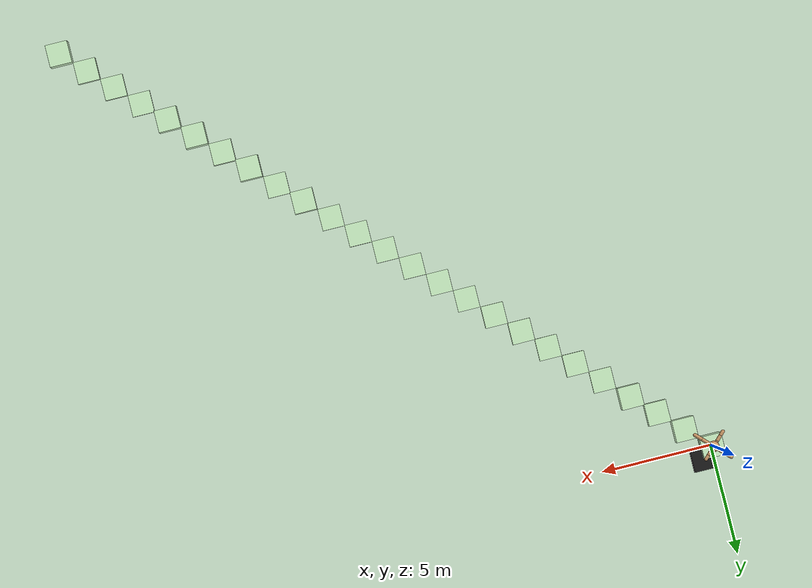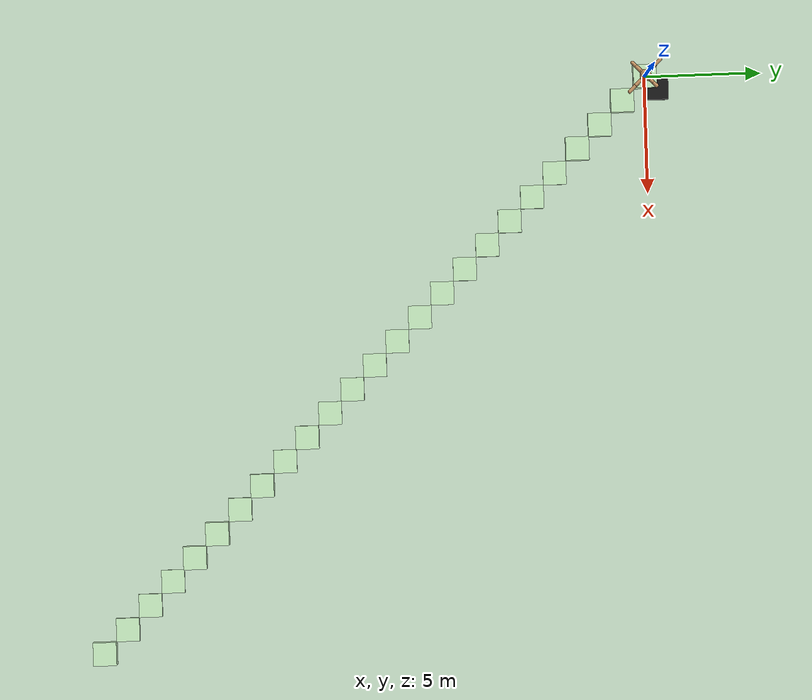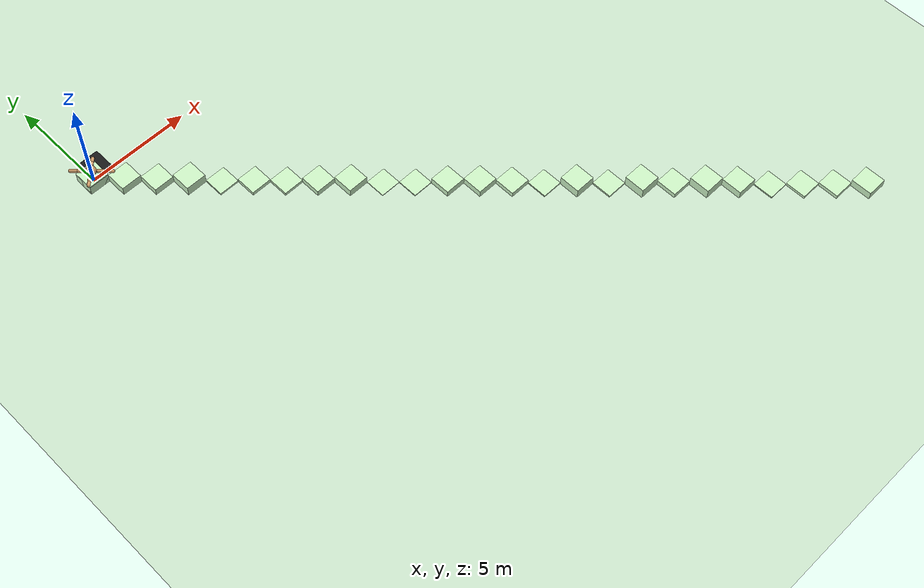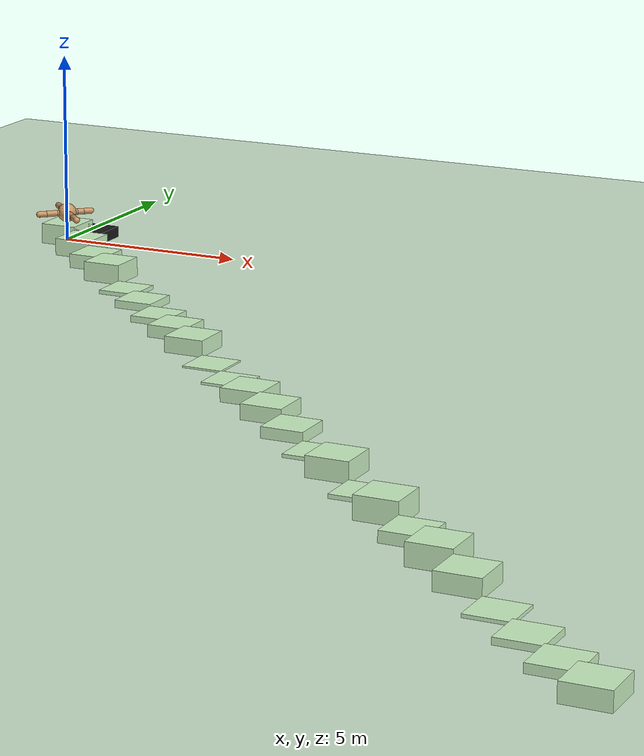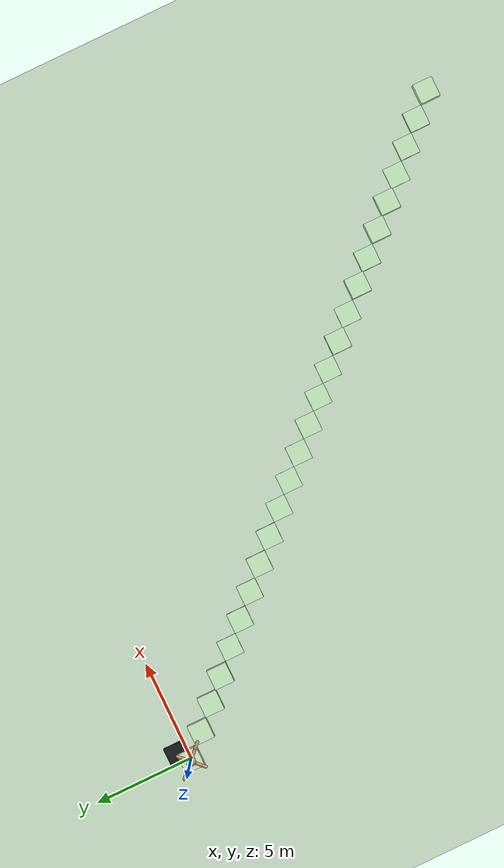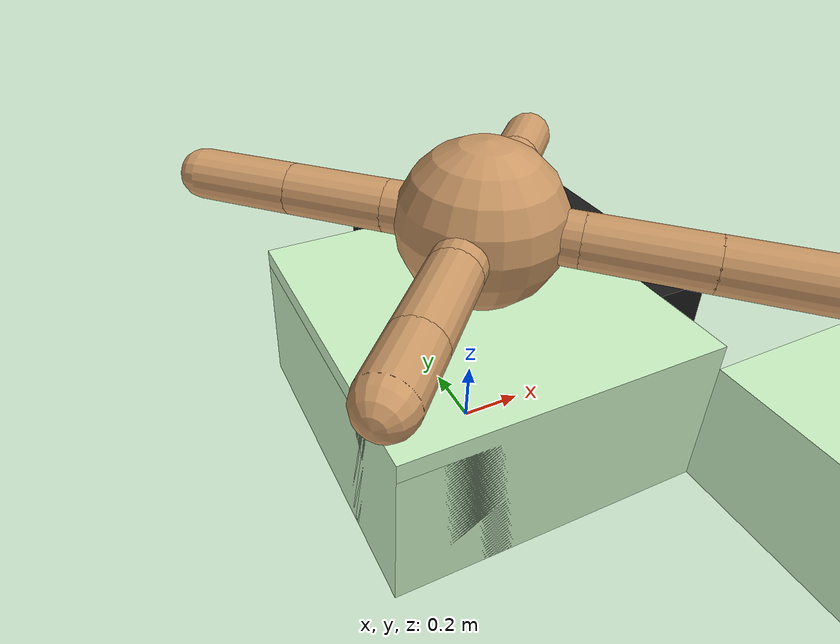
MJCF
<mujoco model="tensegrity default scene">
  <compiler angle="degree" coordinate="local" inertiafromgeom="true" autolimits="true" />
  <option integrator="RK4" timestep="0.01" gravity="0 0 -9.81" />

  <statistic center="0 0 .3" extent="1.2" />

    <asset>
    <texture builtin="gradient" height="100" rgb1="1 1 1" rgb2="0 0 0" type="skybox" width="100" />
    <texture builtin="flat" height="1278" mark="cross" markrgb="1 1 1" name="texgeom" random="0.01" rgb1="0.8 0.6 0.4" rgb2="0.8 0.6 0.4" type="cube" width="127" />
    <texture builtin="checker" height="100" name="texplane" rgb1="0 0 0" rgb2="0.8 0.8 0.8" type="2d" width="100" />
    <material name="MatPlane" reflectance="0.5" shininess="1" specular="1" texrepeat="60 60" texture="texplane" />
    <material name="geom" texture="texgeom" texuniform="true" />
  </asset>

  <worldbody>
    <light cutoff="100" diffuse="1 1 1" dir="-0 0 -1.3" directional="true" exponent="1" pos="0 0 1.3" specular=".1 .1 .1" />
    <geom conaffinity="1" condim="3" material="MatPlane" name="floor" pos="0 0 0" rgba="0.8 0.9 0.8 1" size="40 40 40" type="plane" />

    <geom name="cubea" type="box" size="0.5 0.5 0.5" pos="0.0 0 0" rgba="0.8 0.95 0.77 1" euler="0 0 0" condim="4" />
    <geom name="cubeb" type="box" size="0.5 0.5 0.25" pos="0.5 0.5 0" rgba="0.1 0.1 0.1 1" euler="0 0 0" condim="4" />
    <geom name="cube0" type="box" size="0.5 0.5 0.4418621890076458" pos="0 0 0" rgba="0.8 0.95 0.77 1" euler="0 0 0" condim="4" />
    <geom name="cube1" type="box" size="0.5 0.5 0.4181044580788168" pos="1 -1 0" rgba="0.8 0.95 0.77 1" euler="0 0 0" condim="4" />
    <geom name="cube2" type="box" size="0.5 0.5 0.33189764766219326" pos="2 -2 0" rgba="0.8 0.95 0.77 1" euler="0 0 0" condim="4" />
    <geom name="cube3" type="box" size="0.5 0.5 0.46812135043351083" pos="3 -3 0" rgba="0.8 0.95 0.77 1" euler="0 0 0" condim="4" />
    <geom name="cube4" type="box" size="0.5 0.5 0.0668133047483655" pos="4 -4 0" rgba="0.8 0.95 0.77 1" euler="0 0 0" condim="4" />
    <geom name="cube5" type="box" size="0.5 0.5 0.1640709454814422" pos="5 -5 0" rgba="0.8 0.95 0.77 1" euler="0 0 0" condim="4" />
    <geom name="cube6" type="box" size="0.5 0.5 0.12906584852066066" pos="6 -6 0" rgba="0.8 0.95 0.77 1" euler="0 0 0" condim="4" />
    <geom name="cube7" type="box" size="0.5 0.5 0.27248826323753256" pos="7 -7 0" rgba="0.8 0.95 0.77 1" euler="0 0 0" condim="4" />
    <geom name="cube8" type="box" size="0.5 0.5 0.3623605774783912" pos="8 -8 0" rgba="0.8 0.95 0.77 1" euler="0 0 0" condim="4" />
    <geom name="cube9" type="box" size="0.5 0.5 0.02187684716748134" pos="9 -9 0" rgba="0.8 0.95 0.77 1" euler="0 0 0" condim="4" />
    <geom name="cube10" type="box" size="0.5 0.5 0.029719950150379704" pos="10 -10 0" rgba="0.8 0.95 0.77 1" euler="0 0 0" condim="4" />
    <geom name="cube11" type="box" size="0.5 0.5 0.2973026987459813" pos="11 -11 0" rgba="0.8 0.95 0.77 1" euler="0 0 0" condim="4" />
    <geom name="cube12" type="box" size="0.5 0.5 0.3324627059907669" pos="12 -12 0" rgba="0.8 0.95 0.77 1" euler="0 0 0" condim="4" />
    <geom name="cube13" type="box" size="0.5 0.5 0.2289494770496308" pos="13 -13 0" rgba="0.8 0.95 0.77 1" euler="0 0 0" condim="4" />
    <geom name="cube14" type="box" size="0.5 0.5 0.04549019895439754" pos="14 -14 0" rgba="0.8 0.95 0.77 1" euler="0 0 0" condim="4" />
    <geom name="cube15" type="box" size="0.5 0.5 0.4462916320024102" pos="15 -15 0" rgba="0.8 0.95 0.77 1" euler="0 0 0" condim="4" />
    <geom name="cube16" type="box" size="0.5 0.5 0.06201373680128758" pos="16 -16 0" rgba="0.8 0.95 0.77 1" euler="0 0 0" condim="4" />
    <geom name="cube17" type="box" size="0.5 0.5 0.49780616366998837" pos="17 -17 0" rgba="0.8 0.95 0.77 1" euler="0 0 0" condim="4" />
    <geom name="cube18" type="box" size="0.5 0.5 0.22569495146243151" pos="18 -18 0" rgba="0.8 0.95 0.77 1" euler="0 0 0" condim="4" />
    <geom name="cube19" type="box" size="0.5 0.5 0.4731622058297502" pos="19 -19 0" rgba="0.8 0.95 0.77 1" euler="0 0 0" condim="4" />
    <geom name="cube20" type="box" size="0.5 0.5 0.38171231789956234" pos="20 -20 0" rgba="0.8 0.95 0.77 1" euler="0 0 0" condim="4" />
    <geom name="cube21" type="box" size="0.5 0.5 0.040840919142863974" pos="21 -21 0" rgba="0.8 0.95 0.77 1" euler="0 0 0" condim="4" />
    <geom name="cube22" type="box" size="0.5 0.5 0.11524445920155751" pos="22 -22 0" rgba="0.8 0.95 0.77 1" euler="0 0 0" condim="4" />
    <geom name="cube23" type="box" size="0.5 0.5 0.16702734092951166" pos="23 -23 0" rgba="0.8 0.95 0.77 1" euler="0 0 0" condim="4" />
    <geom name="cube24" type="box" size="0.5 0.5 0.37600408666290336" pos="24 -24 0" rgba="0.8 0.95 0.77 1" euler="0 0 0" condim="4" />
  </worldbody>

<include file="AntRobot.xml" /></mujoco>

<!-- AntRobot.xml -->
<mujoco>
    <default>
        <joint armature="1" damping="1" limited="true"/>
        <geom condim="3" conaffinity="0" density="5.0" friction="1 0.5 0.5" margin="0.01" rgba="0.8 0.6 0.4 1"/>
    </default>
    <worldbody>
        <body name="Base" pos="0.0 0.0 0.75">
            <joint type="free" armature="0" damping="0" limited="false" margin="0.01" pos="0 0 0"/>
            <geom type="sphere" rgba="0.8 0.6 0.4 1" size="0.25"/>
            <camera name="track" mode="trackcom" pos="0 -3 0.3" xyaxes="1 0 0 0 0 1"/>
            <geom name="limb0" type="capsule" fromto="0 0 0 0.2 0.2 0.0" size="0.08"/>
            <body name="rod_0.1" pos="0.26108681695399194 0.26108681695399194 0.0">
                <geom type="capsule" fromto="-0.0610868169539919 -0.0610868169539919 -0.0 0.0610868169539919 0.0610868169539919 0.0" size="0.08" name="geom_0.1"/>
                <site pos="0 0 0" quat="0.9238795325112867 0.0 0.0 0.3826834323650898" name="site_0.1"/>
                <joint type="hinge" pos="-0.0610868169539919 -0.0610868169539919 -0.0" axis="0 0 1" range="-30 30" name="joint_Base=rod_0.1"/>
                <body pos="-0.0610868169539919 -0.0610868169539919 -0.0" name="p0">
                    <site name="p0"/>
                </body>
                <body name="rod_1.2" pos="0.13478721588851914 0.13478721588851914 0.0">
                    <geom type="capsule" fromto="-0.07370039893452723 -0.07370039893452723 -0.0 0.07370039893452723 0.07370039893452723 0.0" size="0.08" name="geom_1.2"/>
                    <site pos="0 0 0" quat="0.9238795325112867 0.0 0.0 0.3826834323650898" name="site_1.2"/>
                    <joint type="hinge" pos="-0.07370039893452723 -0.07370039893452723 -0.0" axis="-1 1 0" range="30 70" name="joint_rod_0.1=rod_1.2"/>
                    <body pos="-0.07370039893452723 -0.07370039893452723 -0.0" name="p1">
                        <site name="p1"/>
                    </body>
                </body>
            </body>
            <geom name="limb1" type="capsule" fromto="0 0 0 -0.2 0.2 0.0" size="0.08"/>
            <body name="rod_3.4" pos="-0.3095760336843627 0.3095760336843627 0.0">
                <geom type="capsule" fromto="0.10957603368436267 -0.10957603368436267 -0.0 -0.10957603368436267 0.10957603368436267 0.0" size="0.08" name="geom_3.4"/>
                <site pos="0 0 0" quat="0.38268343236508984 0.0 -0.0 0.9238795325112867" name="site_3.4"/>
                <joint type="hinge" pos="0.10957603368436267 -0.10957603368436267 -0.0" axis="0 0 1" range="-30 30" name="joint_Base=rod_3.4"/>
                <body pos="0.10957603368436267 -0.10957603368436267 -0.0" name="p3">
                    <site name="p3"/>
                </body>
                <body name="rod_4.5" pos="-0.21932080088284098 0.21932080088284098 0.0">
                    <geom type="capsule" fromto="0.10974476719847831 -0.10974476719847831 -0.0 -0.10974476719847831 0.10974476719847831 0.0" size="0.08" name="geom_4.5"/>
                    <site pos="0 0 0" quat="0.38268343236508984 0.0 -0.0 0.9238795325112867" name="site_4.5"/>
                    <joint type="hinge" pos="0.10974476719847831 -0.10974476719847831 -0.0" axis="1 1 0" range="-70 -30" name="joint_rod_3.4=rod_4.5"/>
                    <body pos="0.10974476719847831 -0.10974476719847831 -0.0" name="p4">
                        <site name="p4"/>
                    </body>
                </body>
            </body>
            <geom name="limb2" type="capsule" fromto="0 0 0 -0.2 -0.2 0.0" size="0.08"/>
            <body name="rod_6.7" pos="-0.3034224318487224 -0.3034224318487224 0.0">
                <geom type="capsule" fromto="0.10342243184872238 0.10342243184872238 -0.0 -0.10342243184872238 -0.10342243184872238 0.0" size="0.08" name="geom_6.7"/>
                <site pos="0 0 0" quat="0.38268343236508984 0.0 -0.0 -0.9238795325112867" name="site_6.7"/>
                <joint type="hinge" pos="0.10342243184872238 0.10342243184872238 -0.0" axis="0 0 1" range="-30 30" name="joint_Base=rod_6.7"/>
                <body pos="0.10342243184872238 0.10342243184872238 -0.0" name="p6">
                    <site name="p6"/>
                </body>
                <body name="rod_7.8" pos="-0.1720302747799328 -0.1720302747799328 0.0">
                    <geom type="capsule" fromto="0.06860784293121042 0.06860784293121042 -0.0 -0.06860784293121042 -0.06860784293121042 0.0" size="0.08" name="geom_7.8"/>
                    <site pos="0 0 0" quat="0.38268343236508984 0.0 -0.0 -0.9238795325112867" name="site_7.8"/>
                    <joint type="hinge" pos="0.06860784293121042 0.06860784293121042 -0.0" axis="-1 1 0" range="-70 -30" name="joint_rod_6.7=rod_7.8"/>
                    <body pos="0.06860784293121042 0.06860784293121042 -0.0" name="p7">
                        <site name="p7"/>
                    </body>
                </body>
            </body>
            <geom name="limb3" type="capsule" fromto="0 0 0 0.2 -0.2 0.0" size="0.08"/>
            <body name="rod_9.10" pos="0.32120399285714785 -0.32120399285714785 0.0">
                <geom type="capsule" fromto="-0.12120399285714781 0.12120399285714781 -0.0 0.12120399285714781 -0.12120399285714781 0.0" size="0.08" name="geom_9.10"/>
                <site pos="0 0 0" quat="0.9238795325112867 0.0 0.0 -0.3826834323650898" name="site_9.10"/>
                <joint type="hinge" pos="-0.12120399285714781 0.12120399285714781 -0.0" axis="0 0 1" range="-30 30" name="joint_Base=rod_9.10"/>
                <body pos="-0.12120399285714781 0.12120399285714781 -0.0" name="p9">
                    <site name="p9"/>
                </body>
                <body name="rod_10.11" pos="0.2449179903109007 -0.2449179903109007 0.0">
                    <geom type="capsule" fromto="-0.12371399745375289 0.12371399745375289 -0.0 0.12371399745375289 -0.12371399745375289 0.0" size="0.08" name="geom_10.11"/>
                    <site pos="0 0 0" quat="0.9238795325112867 0.0 0.0 -0.3826834323650898" name="site_10.11"/>
                    <joint type="hinge" pos="-0.12371399745375289 0.12371399745375289 -0.0" axis="1 1 0" range="30 70" name="joint_rod_9.10=rod_10.11"/>
                    <body pos="-0.12371399745375289 0.12371399745375289 -0.0" name="p10">
                        <site name="p10"/>
                    </body>
                </body>
            </body>
        </body>
    </worldbody>
    <actuator>
        <motor gear="150" ctrlrange="-1.0 1.0" ctrllimited="true" joint="joint_Base=rod_0.1"/>
        <motor gear="150" ctrlrange="-1.0 1.0" ctrllimited="true" joint="joint_rod_0.1=rod_1.2"/>
        <motor gear="150" ctrlrange="-1.0 1.0" ctrllimited="true" joint="joint_Base=rod_3.4"/>
        <motor gear="150" ctrlrange="-1.0 1.0" ctrllimited="true" joint="joint_rod_3.4=rod_4.5"/>
        <motor gear="150" ctrlrange="-1.0 1.0" ctrllimited="true" joint="joint_Base=rod_6.7"/>
        <motor gear="150" ctrlrange="-1.0 1.0" ctrllimited="true" joint="joint_rod_6.7=rod_7.8"/>
        <motor gear="150" ctrlrange="-1.0 1.0" ctrllimited="true" joint="joint_Base=rod_9.10"/>
        <motor gear="150" ctrlrange="-1.0 1.0" ctrllimited="true" joint="joint_rod_9.10=rod_10.11"/>
    </actuator>
    <sensor>
        <accelerometer site="site_0.1"/>
        <gyro site="site_0.1"/>
        <magnetometer site="site_0.1"/>
        <accelerometer site="site_1.2"/>
        <gyro site="site_1.2"/>
        <magnetometer site="site_1.2"/>
        <accelerometer site="site_3.4"/>
        <gyro site="site_3.4"/>
        <magnetometer site="site_3.4"/>
        <accelerometer site="site_4.5"/>
        <gyro site="site_4.5"/>
        <magnetometer site="site_4.5"/>
        <accelerometer site="site_6.7"/>
        <gyro site="site_6.7"/>
        <magnetometer site="site_6.7"/>
        <accelerometer site="site_7.8"/>
        <gyro site="site_7.8"/>
        <magnetometer site="site_7.8"/>
        <accelerometer site="site_9.10"/>
        <gyro site="site_9.10"/>
        <magnetometer site="site_9.10"/>
        <accelerometer site="site_10.11"/>
        <gyro site="site_10.11"/>
        <magnetometer site="site_10.11"/>
    </sensor>
    <contact>
        <pair geom1="geom_0.1" geom2="floor"/>
        <pair geom1="geom_1.2" geom2="floor"/>
        <pair geom1="geom_3.4" geom2="floor"/>
        <pair geom1="geom_4.5" geom2="floor"/>
        <pair geom1="geom_6.7" geom2="floor"/>
        <pair geom1="geom_7.8" geom2="floor"/>
        <pair geom1="geom_9.10" geom2="floor"/>
        <pair geom1="geom_10.11" geom2="floor"/>
    </contact>
</mujoco>
